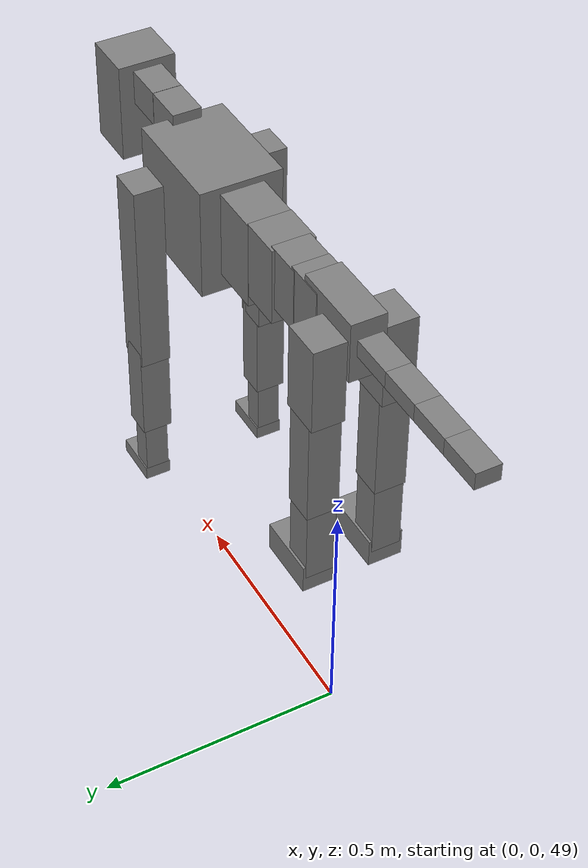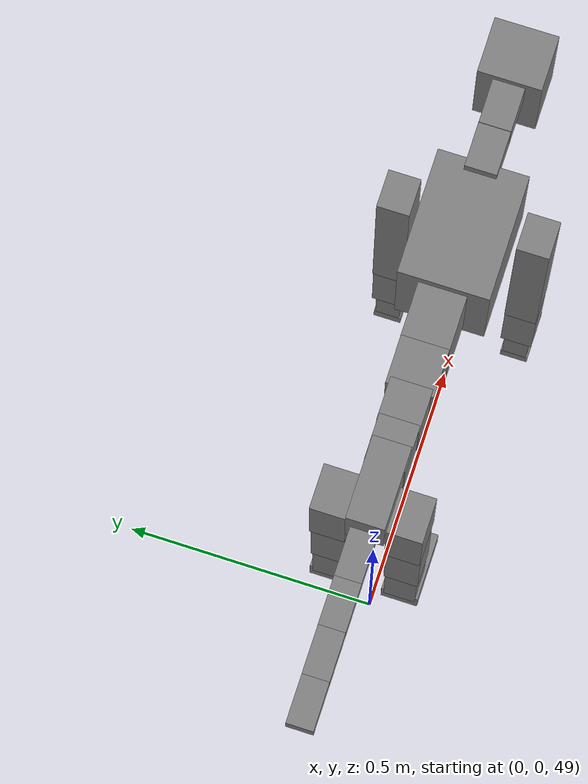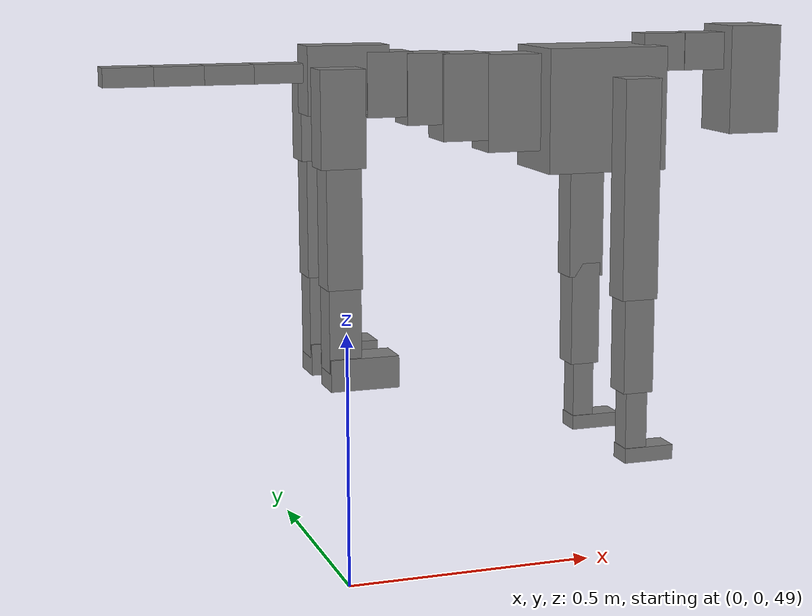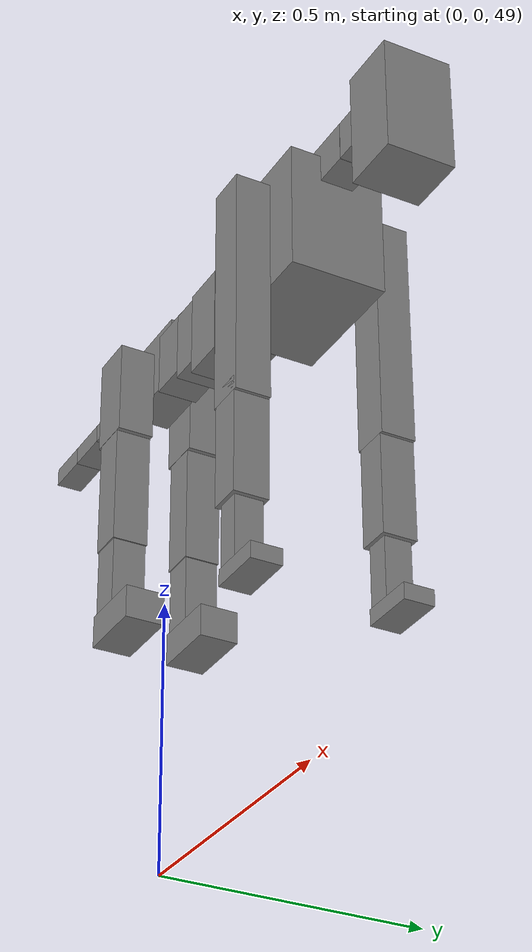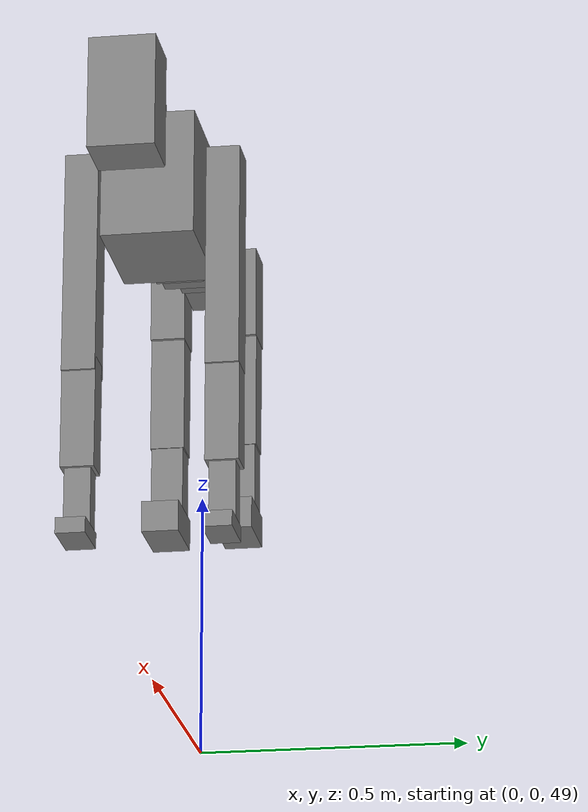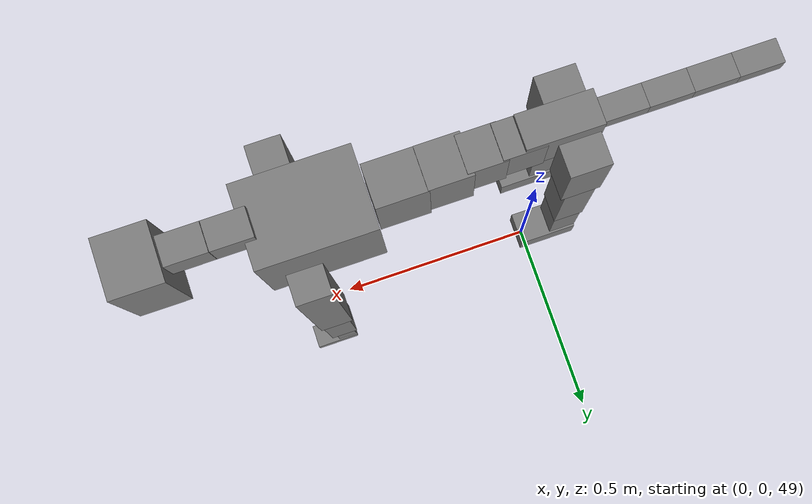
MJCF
<mujoco model="dog">

    <default>
        <joint armature="0.02" stiffness="1" damping="0.2" limited="true"/>
        <geom condim="3" friction="1 0.05 0.05" margin="0.01"/>
        <motor ctrllimited="true" ctrlrange="-1.0 1.0" forcelimited="true" gear="50"/>
    </default>

    <compiler inertiafromgeom="true" angle="radian"/>

    <option timestep="0.016" iterations="50" tolerance="1e-10" solver="Newton" jacobian="dense" cone="pyramidal"/>

    <size nconmax="20000" njmax="60000" nstack="5000000"/>
    <visual>
        <map force="0.1" zfar="30"/>
        <rgba haze="0.15 0.25 0.35 1"/>
        <quality shadowsize="2048"/>
        <global offwidth="800" offheight="800"/>
    </visual>

    <asset>
        <texture type="skybox" builtin="gradient" rgb1="0.3 0.5 0.7" rgb2="0 0 0" width="512" height="512"/>
        <texture name="texplane" type="2d" builtin="checker" rgb1=".2 .3 .4" rgb2=".1 0.15 0.2" width="512" height="512"
                 mark="cross" markrgb=".8 .8 .8"/>
        <texture name="texgeom" type="cube" builtin="flat" mark="cross" width="127" height="1278" rgb1="0.8 0.6 0.4"
                 rgb2="0.8 0.6 0.4" markrgb="1 1 1" random="0.01"/>

        <material name="matplane" reflectance="0.3" texture="texplane" texrepeat="1 1" texuniform="true"/>
        <material name="matgeom" texture="texgeom" texuniform="true" rgba="0.8 0.6 .4 1"/>
    </asset>

    <worldbody>
        <geom name="floor" pos="0 0 0" size="0 0 .25" type="plane" material="matplane" condim="3"/>

        <light directional="false" diffuse=".2 .2 .2" specular="0 0 0" pos="0 0 5" dir="0 0 -1" castshadow="false"/>
        <light mode="targetbodycom" target="torso" directional="false" diffuse=".8 .8 .8" specular="0.3 0.3 0.3"
               pos="0 0 4.0" dir="0 0 -1"/>

        <body name="root" pos="0 0 50">
            <freejoint name="root_1"/>
            <geom type="box" pos="0 0 -0.02" size="0.0774  0.0358  0.063" density="2030"/>

            <body name="spine1" pos="0.054 0 0">
                <joint name="spine1_y" axis="0 1 0" range="0 0.7" limited="true"/>
                <geom type="box" pos="0.02375 0 -0.03" size="0.04375  0.0375  0.05985" density="2030"/>

                <body name="spine2" pos="0.0612 0 0">
                    <joint name="spine2_y" axis="0 1 0" range="-0.15 0.15" limited="true"/>
                    <geom type="box" pos="0.03555  0  -0.04" size="0.04055  0.039  0.06615" density="2030"/>

                    <body name="spine3" pos="0.0730 0 0">
                        <joint name="spine3_y" axis="0 1 0" range="-0.15 0.15" limited="true"/>
                        <geom type="box" pos="0.03555  0  -0.057" size="0.04555  0.0445  0.081" density="2030"/>

                        <body name="spine4" pos="0.0780 0 0">
                            <joint name="spine4_y" axis="0 1 0" range="-0.15 0.15" limited="true"/>
                            <geom type="box" pos="0.05265  0  -0.07" size="0.05265  0.045  0.09135" density="2030"/>

                            <body name="torso" pos="0.1082 0 0">
                                <joint name="torso_y" axis="0 1 0" range="-0.15 0.15" limited="true"/>
                                <geom type="box" pos="0.11925  0  -0.085" size="0.11925  0.085  0.11745"
                                      density="2030"/>

                                <body name="neck1" pos="0.2160  0   0.0180">
                                    <joint name="neck1_y" axis="0 1 0" range="-1.2  -1" limited="true"/>
                                    <geom type="box" pos="0.0423  0  0" size="0.0423  0.03  0.036" density="2325"/>

                                    <body name="neck2" pos="0.0853  0  0">
                                        <joint name="neck2_y" axis="0 1 0" range="0.1  0" limited="true"/>
                                        <geom type="box" pos="0.0423  0  0" size="0.0423  0.03  0.036" density="2325"/>

                                        <body name="head" pos="0.0853  0  0">
                                            <joint name="head_y" axis="0 1 0" range="-0.3  -0.2" limited="true"/>
                                            <geom type="box" pos="0.0531  0  -0.055" size="0.0531  0.06  0.1044"
                                                  density="4030"/>

                                        </body>
                                    </body>
                                </body>

                                <body name="front_shoulder" pos="0.156  0   -0.0480">
                                    <joint name="front_shoulder_y" axis="0 1 0" range="-1 1.5" limited="true"/>
                                    <geom type="box" pos="0 0.13 -0.1818" size="0.0359  0.0307  0.2085" density="1158"/>
                                    <geom type="box" pos="0 -0.13 -0.1818" size="0.0359  0.0307  0.2085"
                                          density="1158"/>

                                    <body name="front_elbow" pos="0  0  -0.3637">
                                        <joint name="front_elbow_y" axis="0 1 0" range="-2 0" limited="true"/>
                                        <geom type="box" pos="0 0.13 -0.1038" size="0.0300  0.0307  0.1038"
                                              density="1081"/>
                                        <geom type="box" pos="0 -0.13 -0.1038" size="0.0300  0.0307  0.1038"
                                              density="1081"/>

                                        <body name="front_wrist" pos="0  0  -0.2077">
                                            <joint name="front_wrist_y" axis="0 1 0" range="-0.2 0" limited="true"/>
                                            <geom type="box" pos="0 0.13 -0.0623" size="0.0218  0.0242  0.0754"
                                                  density="1664"/>
                                            <geom type="box" pos="0 -0.13 -0.0623" size="0.0218  0.0242  0.0754"
                                                  density="1664"/>

                                            <body name="front_finger_end" pos="0  0  -0.1246">
                                                <joint name="front_finger_y" axis="0 1 0" range="-0.4 1"
                                                       limited="true"/>
                                                <geom type="box" pos="0.0270  0.13  0.0005"
                                                      size="0.0496  0.0270  0.0145" density="1515"/>
                                                <geom type="box" pos="0.0270  -0.13  0.0005"
                                                      size="0.0496  0.0270  0.0145" density="1515"/>

                                            </body>

                                        </body>
                                    </body>
                                </body>

                            </body>
                        </body>
                    </body>
                </body>
            </body>

            <body name="back_hip" pos="-0.03 0 -0.018">
                <joint name="back_hip_y" axis="0 1 0" range="-1.5 0.3" limited="true"/>
                <geom type="box" pos="0 0.07 -0.0665" size="0.0421  0.0330  0.0893" density="1154"/>
                <geom type="box" pos="0 -0.07 -0.0665" size="0.0421  0.0330  0.0893" density="1154"/>

                <body name="back_knee" pos="0  0  -0.1329">
                    <joint name="back_knee_y" axis="0 1 0" range="0 2.8" limited="true"/>
                    <geom type="box" pos="0 0.07 -0.1140" size="0.0330  0.0325  0.1296" density="1227"/>
                    <geom type="box" pos="0 -0.07 -0.1140" size="0.0330  0.0325  0.1296" density="1227"/>

                    <body name="back_ankle" pos="0  0  -0.2280">
                        <joint name="back_ankle_y" axis="0 1 0" range="-2.2 0" limited="true"/>
                        <geom type="box" pos="0 0.07 -0.0796" size="0.0304  0.0304  0.0908" density="1284"/>
                        <geom type="box" pos="0 -0.07 -0.0796" size="0.0304  0.0304  0.0908" density="1284"/>

                        <body name="back_toe_end" pos="0  0  -0.1592">
                            <joint name="back_toe_y" axis="0 1 0" range="-0.4 1" limited="true"/>
                            <geom type="box" pos="0.0354  0.07  -0.0149" size="0.0649  0.0354  0.0299" density="1515"/>
                            <geom type="box" pos="0.0354  -0.07  -0.0149" size="0.0649  0.0354  0.0299" density="1515"/>

                        </body>
                    </body>
                </body>
            </body>

            <body name="tail1" pos="-0.074 0 -0.006">
                <joint name="tail1_y" axis="0 1 0" range="-0.2 0.2" limited="true"/>
                <geom type="box" pos="-0.0536  0  0" size="0.045  0.025  0.0175" density="1587"/>

                <body name="tail2" pos="-0.09 0 0">
                    <joint name="tail2_y" axis="0 1 0" range="-0.2 0.2" limited="true"/>
                    <geom type="box" pos="-0.0536  0  0" size="0.045  0.025  0.0175" density="1587"/>

                    <body name="tail3" pos="-0.09 0 0">
                        <joint name="tail3_y" axis="0 1 0" range="-0.2 0.2" limited="true"/>
                        <geom type="box" pos="-0.0536  0  0" size="0.045  0.025  0.0175" density="1587"/>

                        <body name="tail4" pos="-0.09 0 0">
                            <joint name="tail4_y" axis="0 1 0" range="-0.2 0.2" limited="true"/>
                            <geom type="box" pos="-0.0536  0  0" size="0.045  0.025  0.0175" density="1587"/>

                        </body>
                    </body>
                </body>
            </body>
        </body>
    </worldbody>

    <actuator>
        <motor joint="spine1_y" forcerange="-150 150     "/>
        <motor joint="spine2_y" forcerange="-150 150     "/>
        <motor joint="spine3_y" forcerange="-150 150     "/>
        <motor joint="spine4_y" forcerange="-150 150     "/>
        <motor joint="torso_y" forcerange="-150 150     "/>
        <motor joint="neck1_y" forcerange="-100 100       "/>
        <motor joint="neck2_y" forcerange="-100 100       "/>
        <motor joint="head_y" forcerange="-150 150       "/>
        <motor joint="front_shoulder_y" forcerange="-162.75 141.69"/>
        <motor joint="front_elbow_y" forcerange="-183.85 139.35"/>
        <motor joint="front_wrist_y" forcerange="-110.47 82.94"/>
        <motor joint="front_finger_y" forcerange="-23.00 81.20"/>
        <motor joint="back_hip_y" forcerange="-390.82 249.49"/>
        <motor joint="back_knee_y" forcerange="-313.23 359.71"/>
        <motor joint="back_angle_y" forcerange="-228.21 157.85"/>
        <motor joint="back_toe_y" forcerange="-109.76 93.42"/>
        <motor joint="tail1_y" forcerange="-50 50     "/>
        <motor joint="tail2_y" forcerange="-50 50     "/>
        <motor joint="tail3_y" forcerange="-50 50     "/>
        <motor joint="tail4_y" forcerange="-50 50     "/>
    </actuator>
</mujoco>
